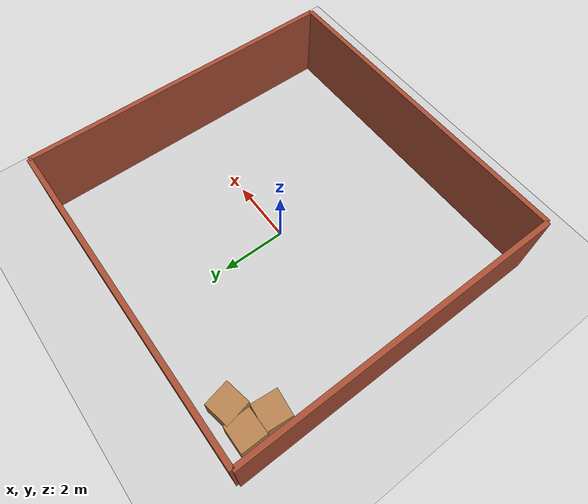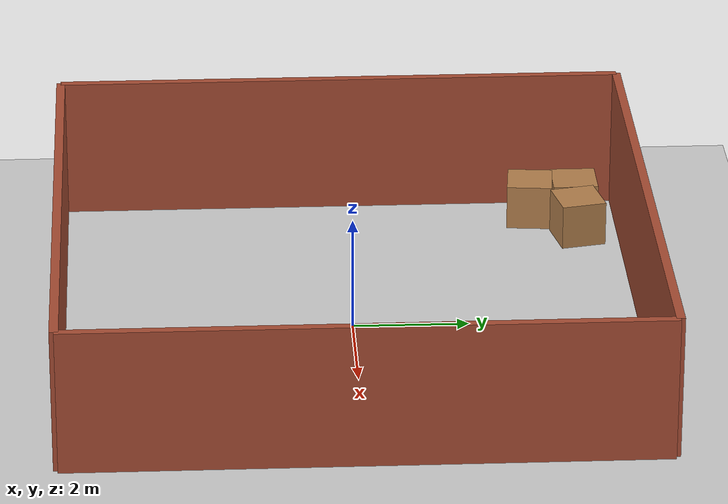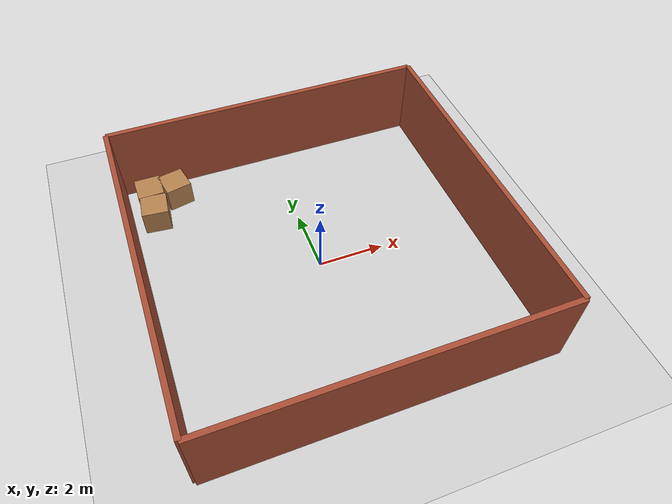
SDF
<sdf version="1.7">
 <world name="mondo_tesi_1">
  <include><uri>model://sun</uri></include>
  <include><uri>model://ground_plane</uri></include>
  <plugin name="ActorPosesPlugin" filename="libActorPosesPlugin.so"/>
  <model name="wall_west">
   <static>1</static>
   <link name="l">
    <pose>-5 0 1.25 0 -0 0</pose>
    <collision name="c"><geometry><box><size>0.15 10 2.5</size></box></geometry></collision>
    <visual name="v">
     <geometry><box><size>0.15 10 2.5</size></box></geometry>
     <material>
      <script><uri>file://media/materials/scripts/gazebo.material</uri><name>Gazebo/Bricks</name></script>
     </material>
    </visual>
   </link>
  </model>
  <model name="wall_east">
   <static>1</static>
   <link name="l">
    <pose>5 0 1.25 0 -0 0</pose>
    <collision name="c"><geometry><box><size>0.15 10 2.5</size></box></geometry></collision>
    <visual name="v">
     <geometry><box><size>0.15 10 2.5</size></box></geometry>
     <material>
      <script><uri>file://media/materials/scripts/gazebo.material</uri><name>Gazebo/Bricks</name></script>
     </material>
    </visual>
   </link>
  </model>
  <model name="wall_north">
   <static>1</static>
   <link name="l">
    <pose>0 5 1.25 0 -0 0</pose>
    <collision name="c"><geometry><box><size>10 0.15 2.5</size></box></geometry></collision>
    <visual name="v">
     <geometry><box><size>10 0.15 2.5</size></box></geometry>
     <material>
      <script><uri>file://media/materials/scripts/gazebo.material</uri><name>Gazebo/Bricks</name></script>
     </material>
    </visual>
   </link>
  </model>
  <model name="wall_south">
   <static>1</static>
   <link name="l">
    <pose>0 -5 1.25 0 -0 0</pose>
    <collision name="c"><geometry><box><size>10 0.15 2.5</size></box></geometry></collision>
    <visual name="v">
     <geometry><box><size>10 0.15 2.5</size></box></geometry>
     <material>
      <script><uri>file://media/materials/scripts/gazebo.material</uri><name>Gazebo/Bricks</name></script>
     </material>
    </visual>
   </link>
  </model>
  <model name="box1">
   <static>1</static>
   <link name="l">
    <pose>-4.2 4.2 0.4 0 -0 0</pose>
    <collision name="c"><geometry><box><size>0.8 0.8 0.8</size></box></geometry></collision>
    <visual name="v">
     <geometry><box><size>0.8 0.8 0.8</size></box></geometry>
     <material>
      <script><uri>file://media/materials/scripts/gazebo.material</uri><name>Gazebo/Wood</name></script>
     </material>
    </visual>
   </link>
  </model>
  <model name="box2">
   <static>1</static>
   <link name="l">
    <pose>-3.4 4.2 0.4 0 -0 0.2</pose>
    <collision name="c"><geometry><box><size>0.8 0.8 0.8</size></box></geometry></collision>
    <visual name="v">
     <geometry><box><size>0.8 0.8 0.8</size></box></geometry>
     <material>
      <script><uri>file://media/materials/scripts/gazebo.material</uri><name>Gazebo/Wood</name></script>
     </material>
    </visual>
   </link>
  </model>
  <model name="box3">
   <static>1</static>
   <link name="l">
    <pose>-4.2 3.4 0.4 0 0 -0.1</pose>
    <collision name="c"><geometry><box><size>0.8 0.8 0.8</size></box></geometry></collision>
    <visual name="v">
     <geometry><box><size>0.8 0.8 0.8</size></box></geometry>
     <material>
      <script><uri>file://media/materials/scripts/gazebo.material</uri><name>Gazebo/Wood</name></script>
     </material>
    </visual>
   </link>
  </model>
  <physics type="ode">
   <real_time_update_rate>1000</real_time_update_rate>
   <max_step_size>0.001</max_step_size>
   <real_time_factor>1</real_time_factor>
  </physics>
  <scene><ambient>0.4 0.4 0.4 1</ambient><background>0.7 0.7 0.7 1</background><shadows>1</shadows></scene>
 </world>
</sdf>
